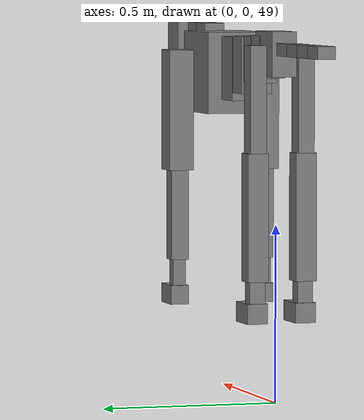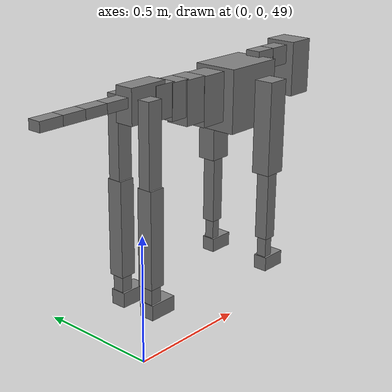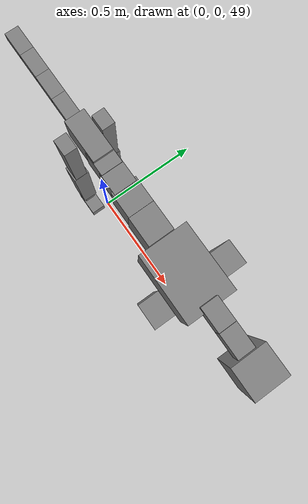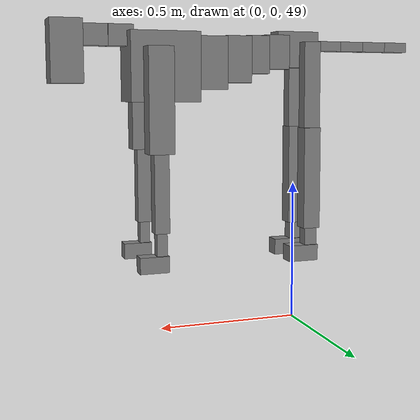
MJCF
<mujoco model="dog">

    <default>
        <joint armature="0.02" stiffness="1" damping="0.2" limited="true"/>
        <geom condim="3" friction="1 0.05 0.05" margin="0.01"/>
        <motor ctrllimited="true" ctrlrange="-1.0 1.0" forcelimited="true" gear="50"/>
    </default>

    <compiler inertiafromgeom="true" angle="radian"/>

    <option timestep="0.016" iterations="50" tolerance="1e-10" solver="Newton" jacobian="dense" cone="pyramidal"/>

    <size nconmax="20000" njmax="60000" nstack="5000000"/>
    <visual>
        <map force="0.1" zfar="30"/>
        <rgba haze="0.15 0.25 0.35 1"/>
        <quality shadowsize="2048"/>
        <global offwidth="800" offheight="800"/>
    </visual>

    <asset>
        <texture type="skybox" builtin="gradient" rgb1="0.3 0.5 0.7" rgb2="0 0 0" width="512" height="512"/>
        <texture name="texplane" type="2d" builtin="checker" rgb1=".2 .3 .4" rgb2=".1 0.15 0.2" width="512" height="512"
                 mark="cross" markrgb=".8 .8 .8"/>
        <texture name="texgeom" type="cube" builtin="flat" mark="cross" width="127" height="1278" rgb1="0.8 0.6 0.4"
                 rgb2="0.8 0.6 0.4" markrgb="1 1 1" random="0.01"/>

        <material name="matplane" reflectance="0.3" texture="texplane" texrepeat="1 1" texuniform="true"/>
        <material name="matgeom" texture="texgeom" texuniform="true" rgba="0.8 0.6 .4 1"/>
    </asset>

    <worldbody>
        <geom name="floor" pos="0 0 0" size="0 0 .25" type="plane" material="matplane" condim="3"/>

        <light directional="false" diffuse=".2 .2 .2" specular="0 0 0" pos="0 0 5" dir="0 0 -1" castshadow="false"/>
        <light mode="targetbodycom" target="torso" directional="false" diffuse=".8 .8 .8" specular="0.3 0.3 0.3"
               pos="0 0 4.0" dir="0 0 -1"/>

        <body name="root" pos="0 0 50">
            <freejoint name="root_1"/>
            <geom type="box" pos="0 0 -0.02" size="0.0774  0.0358  0.063" density="2030"/>

            <body name="spine1" pos="0.054 0 0">
                <joint name="spine1_y" axis="0 1 0" range="0 0.7" limited="true"/>
                <geom type="box" pos="0.02375 0 -0.03" size="0.04375  0.0375  0.05985" density="2030"/>

                <body name="spine2" pos="0.0612 0 0">
                    <joint name="spine2_y" axis="0 1 0" range="-0.15 0.15" limited="true"/>
                    <geom type="box" pos="0.03555  0  -0.04" size="0.04055  0.039  0.06615" density="2030"/>

                    <body name="spine3" pos="0.0730 0 0">
                        <joint name="spine3_y" axis="0 1 0" range="-0.15 0.15" limited="true"/>
                        <geom type="box" pos="0.03555  0  -0.057" size="0.04555  0.0445  0.081" density="2030"/>

                        <body name="spine4" pos="0.0780 0 0">
                            <joint name="spine4_y" axis="0 1 0" range="-0.15 0.15" limited="true"/>
                            <geom type="box" pos="0.05265  0  -0.07" size="0.05265  0.045  0.09135" density="2030"/>

                            <body name="torso" pos="0.1082 0 0">
                                <joint name="torso_y" axis="0 1 0" range="-0.15 0.15" limited="true"/>
                                <geom type="box" pos="0.11925  0  -0.085" size="0.11925  0.085  0.11745"
                                      density="2030"/>

                                <body name="neck1" pos="0.2160  0   0.0180">
                                    <joint name="neck1_y" axis="0 1 0" range="-1.2  -1" limited="true"/>
                                    <geom type="box" pos="0.0423  0  0" size="0.0423  0.03  0.036" density="2325"/>

                                    <body name="neck2" pos="0.0853  0  0">
                                        <joint name="neck2_y" axis="0 1 0" range="0.1  0" limited="true"/>
                                        <geom type="box" pos="0.0423  0  0" size="0.0423  0.03  0.036" density="2325"/>

                                        <body name="head" pos="0.0853  0  0">
                                            <joint name="head_y" axis="0 1 0" range="-0.3  -0.2" limited="true"/>
                                            <geom type="box" pos="0.0531  0  -0.055" size="0.0531  0.06  0.1044"
                                                  density="4030"/>

                                        </body>
                                    </body>
                                </body>

                                <body name="front_shoulder" pos="0.156  0   -0.0480">
                                    <joint name="front_shoulder_y" axis="0 1 0" range="-1 1.5" limited="true"/>
                                    <geom type="box" pos="0 0.13 -0.1482" size="0.0425  0.0363  0.1748" density="1158"/>
                                    <geom type="box" pos="0 -0.13 -0.1482" size="0.0425  0.0363  0.1748"
                                          density="1158"/>

                                    <body name="front_elbow" pos="0  0  -0.2963">
                                        <joint name="front_elbow_y" axis="0 1 0" range="-2 0" limited="true"/>
                                        <geom type="box" pos="0 0.13 -0.1440" size="0.0249  0.0255  0.1440"
                                              density="1081"/>
                                        <geom type="box" pos="0 -0.13 -0.1440" size="0.0249  0.0255  0.1440"
                                              density="1081"/>

                                        <body name="front_wrist" pos="0  0  -0.2881">
                                            <joint name="front_wrist_y" axis="0 1 0" range="-0.2 0" limited="true"/>
                                            <geom type="box" pos="0 0.13 -0.0453" size="0.0174  0.0193  0.0585"
                                                  density="1664"/>
                                            <geom type="box" pos="0 -0.13 -0.0453" size="0.0174  0.0193  0.0585"
                                                  density="1664"/>

                                            <body name="front_finger_end" pos="0  0  -0.0907">
                                                <joint name="front_finger_y" axis="0 1 0" range="-0.4 1"
                                                       limited="true"/>
                                                <geom type="box" pos="0.0269  0.13  -0.0124"
                                                      size="0.0494  0.0269  0.0274" density="1515"/>
                                                <geom type="box" pos="0.0269  -0.13  -0.0124"
                                                      size="0.0494  0.0269  0.0274" density="1515"/>

                                            </body>

                                        </body>
                                    </body>
                                </body>

                            </body>
                        </body>
                    </body>
                </body>
            </body>

            <body name="back_hip" pos="-0.03 0 -0.018">
                <joint name="back_hip_y" axis="0 1 0" range="-1.5 0.3" limited="true"/>
                <geom type="box" pos="0 0.07 -0.1464" size="0.0298  0.0234  0.1692" density="1154"/>
                <geom type="box" pos="0 -0.07 -0.1464" size="0.0298  0.0234  0.1692" density="1154"/>

                <body name="back_knee" pos="0  0  -0.2928">
                    <joint name="back_knee_y" axis="0 1 0" range="0 2.8" limited="true"/>
                    <geom type="box" pos="0 0.07 -0.1635" size="0.0305  0.0300  0.1791" density="1227"/>
                    <geom type="box" pos="0 -0.07 -0.1635" size="0.0305  0.0300  0.1791" density="1227"/>

                    <body name="back_ankle" pos="0  0  -0.3271">
                        <joint name="back_ankle_y" axis="0 1 0" range="-2.2 0" limited="true"/>
                        <geom type="box" pos="0 0.07 -0.0457" size="0.0222  0.0222  0.0570" density="1284"/>
                        <geom type="box" pos="0 -0.07 -0.0457" size="0.0222  0.0222  0.0570" density="1284"/>

                        <body name="back_toe_end" pos="0  0  -0.0914">
                            <joint name="back_toe_y" axis="0 1 0" range="-0.4 1" limited="true"/>
                            <geom type="box" pos="0.0296  0.07  -0.0133" size="0.0542  0.0296  0.0283" density="1515"/>
                            <geom type="box" pos="0.0296  -0.07  -0.0133" size="0.0542  0.0296  0.0283" density="1515"/>

                        </body>
                    </body>
                </body>
            </body>

            <body name="tail1" pos="-0.074 0 -0.006">
                <joint name="tail1_y" axis="0 1 0" range="-0.2 0.2" limited="true"/>
                <geom type="box" pos="-0.0536  0  0" size="0.045  0.025  0.0175" density="1587"/>

                <body name="tail2" pos="-0.09 0 0">
                    <joint name="tail2_y" axis="0 1 0" range="-0.2 0.2" limited="true"/>
                    <geom type="box" pos="-0.0536  0  0" size="0.045  0.025  0.0175" density="1587"/>

                    <body name="tail3" pos="-0.09 0 0">
                        <joint name="tail3_y" axis="0 1 0" range="-0.2 0.2" limited="true"/>
                        <geom type="box" pos="-0.0536  0  0" size="0.045  0.025  0.0175" density="1587"/>

                        <body name="tail4" pos="-0.09 0 0">
                            <joint name="tail4_y" axis="0 1 0" range="-0.2 0.2" limited="true"/>
                            <geom type="box" pos="-0.0536  0  0" size="0.045  0.025  0.0175" density="1587"/>

                        </body>
                    </body>
                </body>
            </body>
        </body>
    </worldbody>

    <actuator>
        <motor joint="spine1_y" forcerange="-150 150     "/>
        <motor joint="spine2_y" forcerange="-150 150     "/>
        <motor joint="spine3_y" forcerange="-150 150     "/>
        <motor joint="spine4_y" forcerange="-150 150     "/>
        <motor joint="torso_y" forcerange="-150 150     "/>
        <motor joint="neck1_y" forcerange="-100 100       "/>
        <motor joint="neck2_y" forcerange="-100 100       "/>
        <motor joint="head_y" forcerange="-150 150       "/>
        <motor joint="front_shoulder_y" forcerange="-182.79 159.31"/>
        <motor joint="front_elbow_y" forcerange="-182.20 103.06"/>
        <motor joint="front_wrist_y" forcerange="-59.42 95.17"/>
        <motor joint="front_finger_y" forcerange="-36.73 66.97"/>
        <motor joint="back_hip_y" forcerange="-240.02 271.80"/>
        <motor joint="back_knee_y" forcerange="-283.96 352.94"/>
        <motor joint="back_angle_y" forcerange="-149.61 105.31"/>
        <motor joint="back_toe_y" forcerange="-83.88 72.67"/>
        <motor joint="tail1_y" forcerange="-50 50     "/>
        <motor joint="tail2_y" forcerange="-50 50     "/>
        <motor joint="tail3_y" forcerange="-50 50     "/>
        <motor joint="tail4_y" forcerange="-50 50     "/>
    </actuator>
</mujoco>
